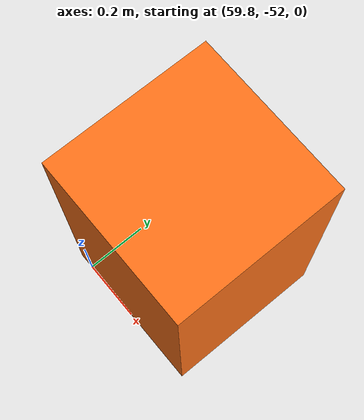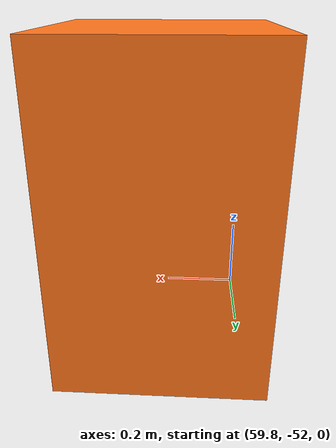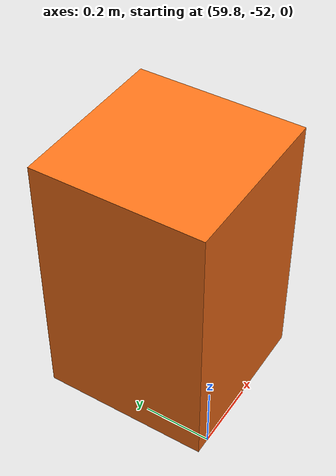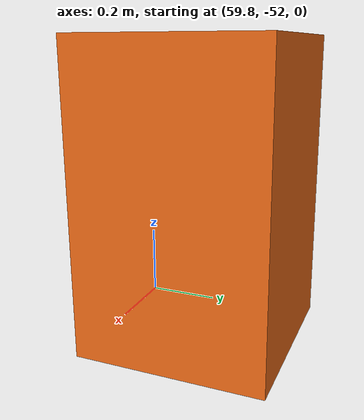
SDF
<?xml version="1.0" ?>
<sdf version="1.9">
  <model name="campus_obstacles_block">
    <static>true</static>
    <link name="cone_center">
      <pose>60 -51.75 0.4 0 0 0</pose>
      <collision name="collision">
        <geometry><box><size>0.5 0.5 0.8</size></box></geometry>
      </collision>
      <visual name="visual">
        <geometry><box><size>0.5 0.5 0.8</size></box></geometry>
        <material><ambient>0.9 0.35 0.05 1</ambient><diffuse>1.0 0.45 0.1 1</diffuse></material>
      </visual>
    </link>
  </model>
</sdf>
